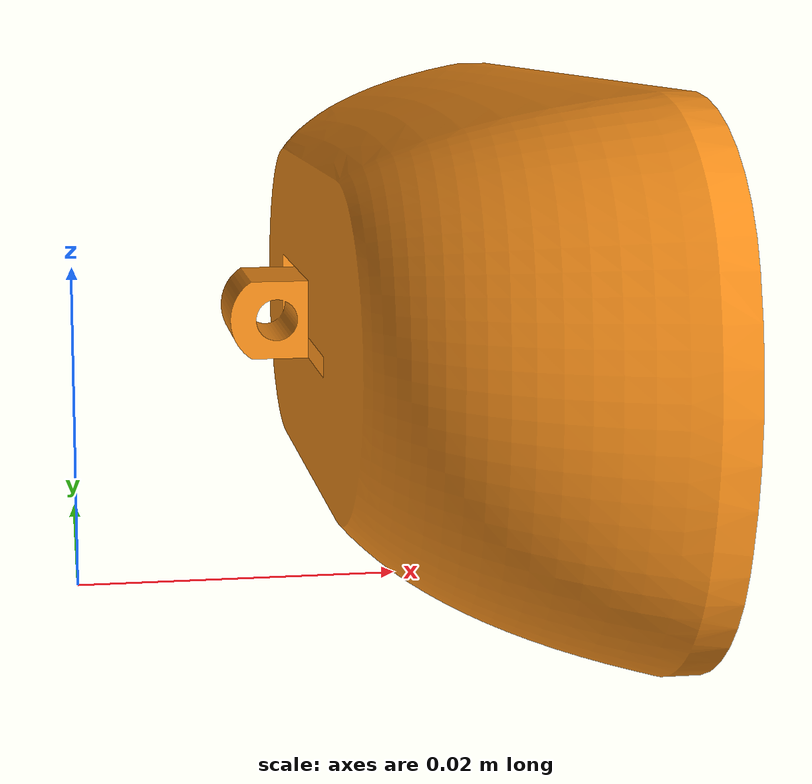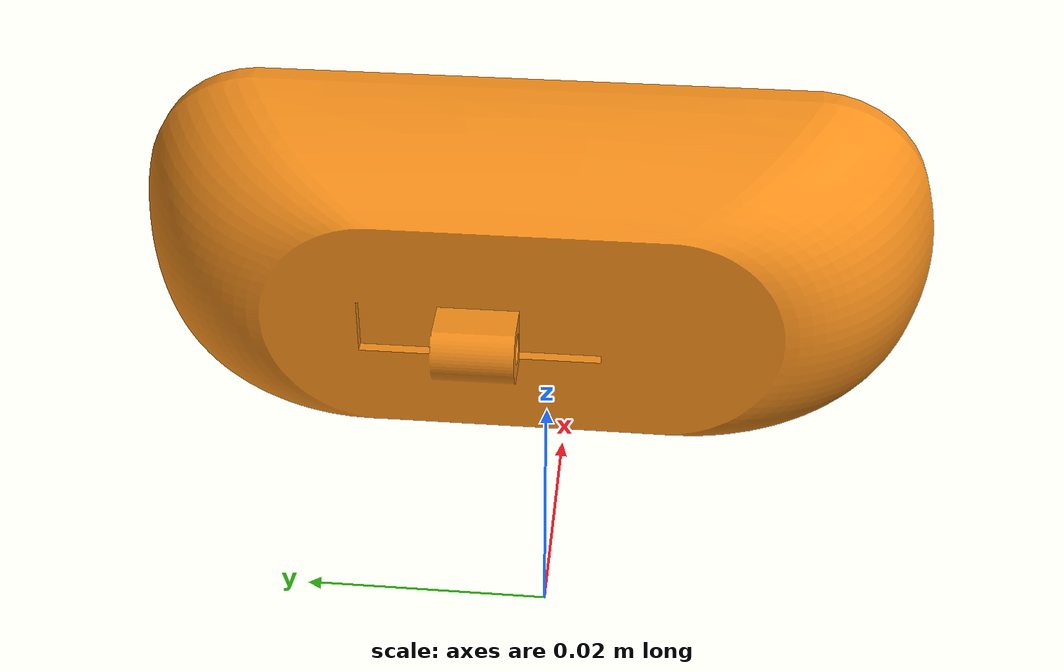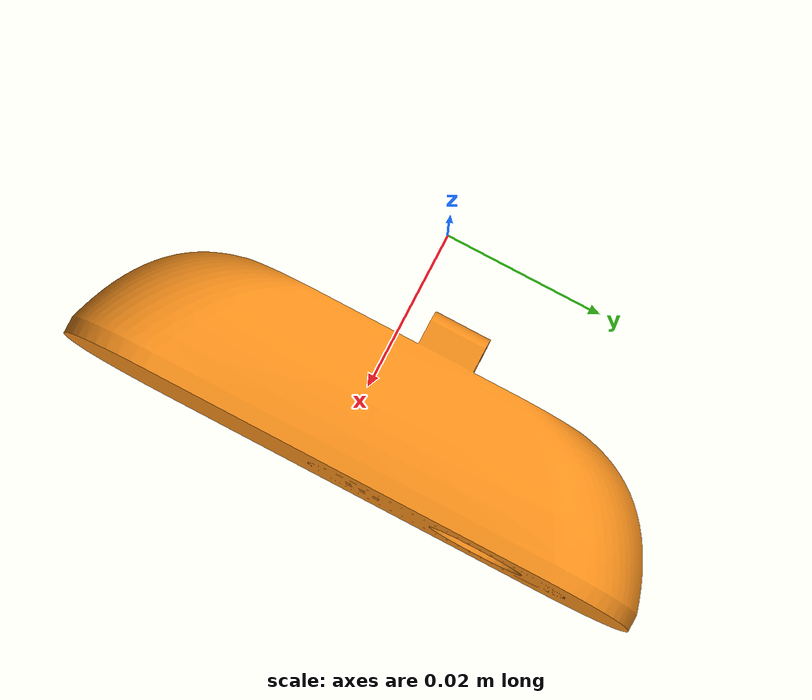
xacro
<?xml version="1.0"?>
<robot name="testprotobot" xmlns:xacro="http://www.ros.org/wiki/xacro">

    <xacro:property name="mass_webcam" value="0.028" />

    <link name="world" />

    <link name="camera_link">
        <visual>
            <origin xyz="-0.015 0.04 -0.005" rpy="0 0 -${pi/2}" />
            <geometry>
                <mesh filename="package://protobot_description/meshes/webcam_gz0.01.STL"
                    scale="0.001 0.001 0.001" />
            </geometry>
            <material name="orange" />
        </visual>
        <collision>
            <origin xyz="-0.015 0.04 -0.005" rpy="0 0 -${pi/2}" />
            <geometry>
                <mesh filename="package://protobot_description/meshes/webcam_gz0.01.STL"
                    scale="0.001 0.001 0.001" />
            </geometry>
        </collision>
        <inertial>
            <mass value="${mass_webcam}" />
            <inertia ixx="0.000002" ixy="0" ixz="0"
                iyy="0.000011" iyz="0"
                izz="0.000010" />
        </inertial>
    </link>

    <link name="camera_link_optical"/>

    <joint name="rod4_camera_joint" type="fixed">
        <origin xyz="0.025 0 0.005" rpy="0 0 0" />
        <parent link="world" />
        <child link="camera_link" />
    </joint>

    <joint name="camera_optical_joint" type="fixed">
        <origin xyz="0.005 0.02 0.01" rpy="-1.5707 0 -1.5707"/>
        <parent link="camera_link"/>
        <child link="camera_link_optical"/>
    </joint>

    <gazebo reference="camera_link">
        <sensor name="camera" type="camera">
            <camera>
                <horizontal_fov>1.3962634</horizontal_fov>
                <image>
                    <width>640</width>
                    <height>480</height>
                    <format>R8G8B8</format>
                </image>
                <clip>
                    <near>0.1</near>
                    <far>15</far>
                </clip>
                <noise>
                    <type>gaussian</type>
                    <mean>0.0</mean>
                    <stddev>0.007</stddev>
                </noise>
                <optical_frame_id>camera_link_optical</optical_frame_id>
                <camera_info_topic>arm_camera/camera_info</camera_info_topic>
            </camera>
            <always_on>1</always_on>
            <update_rate>20</update_rate>
            <visualize>true</visualize>
            <topic>arm_camera/image</topic>
        </sensor>
    </gazebo>
</robot>
